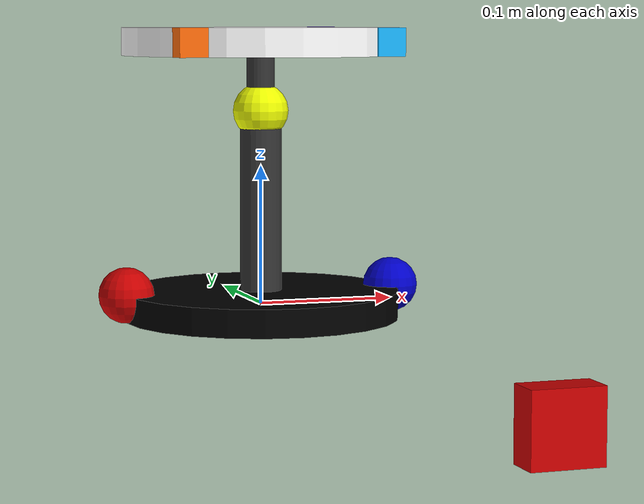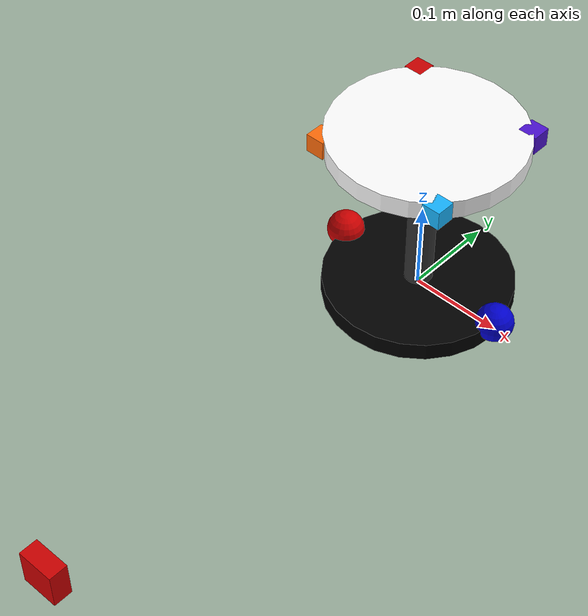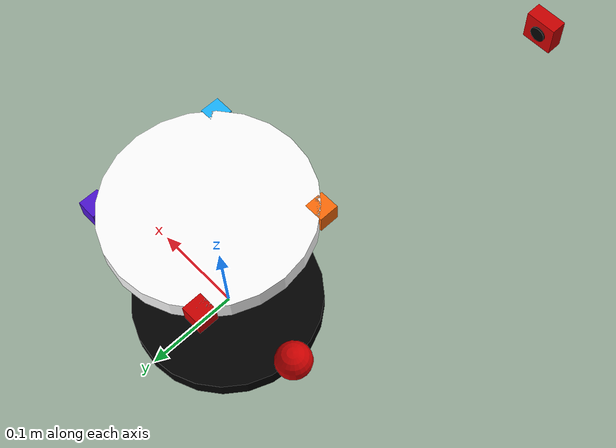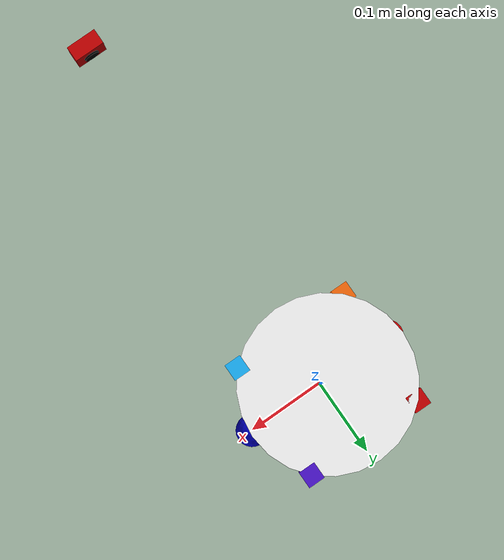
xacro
<?xml version="1.0" ?>

<robot name="cable_joint" xmlns:xacro="https://www.ros.org/wiki/xacro" >

  <!-- Constants for robot dimensions -->
  <xacro:property name="PI" value="3.1415926535897931"/>
  <xacro:property name="body_length" value="0.02" /> <!-- Size of square 'camera' box -->

  <!-- Import all Gazebo-customization elements, including Gazebo colors -->
  <xacro:include filename="$(find gazebo_rl)/cable_joint_description/urdf/cable_joint.gazebo.xacro" />
  <!-- Import Rviz colors -->
  <xacro:include filename="$(find gazebo_rl)/cable_joint_description/urdf/materials.xacro" />

  <!-- Used for fixing robot to Gazebo 'base_link' -->
  <link name="world"/>

  <joint name="joint_world_base" type="revolute">
    <origin rpy="0 0 0" xyz="0 0 0"/>
    <parent link="world"/>
    <child link="link_base"/>
    <limit effort="0" lower="0" upper="0" velocity="0"/>
    <axis rpy="0 0 0" xyz="0 0 1"/>
  </joint>

  <link name="link_base">
    <collision>
      <origin rpy="0 0 0" xyz="0 0 0"/>
      <geometry>
        <cylinder length="0.02" radius="0.1"/>
      </geometry>
    </collision>
    <visual>
      <origin rpy="0 0 0" xyz="0 0 0"/>
      <geometry>
        <cylinder length="0.02" radius="0.1"/>
      </geometry>
      <material name="black"/>
    </visual>
    <inertial>
      <mass value="1000"/>
      <origin rpy="0 0 0" xyz="0 0 0"/>
      <inertia ixx="2.533" ixy="0" ixz="0" iyy="2.533" iyz="0" izz="5.236"/>
    </inertial>
  </link>

  <joint name="joint_world_camerabody" type="revolute">
    <origin rpy="0 0 ${PI/2}" xyz="0 -0.5 ${body_length/2}"/>
    <parent link="world"/>
    <child link="link_camera_body"/>
    <limit effort="0" lower="0" upper="0" velocity="0"/>
    <axis rpy="0 0 0" xyz="0 0 1"/>
  </joint>

  <link name="link_camera_body">
    <collision>
      <origin rpy="0 0 0" xyz="0 -0.5 0"/>
      <geometry>
        <box size="${body_length} ${body_length*2} ${body_length*2}"/>
      </geometry>
    </collision>
    <visual>
      <origin rpy="0 0 0" xyz="0 0 0"/>
      <geometry>
        <box size="${body_length} ${body_length*2} ${body_length*2}"/>
      </geometry>
      <material name="red"/>
    </visual>
    <inertial>
      <mass value="0.1"/>
      <origin rpy="0 0 0" xyz="0 0 0"/>
      <inertia ixx="1e-6" ixy="0" ixz="0" iyy="1e-6" iyz="0" izz="1e-6"/>
    </inertial>
  </link>

  <joint name="joint_camerabody_lens" type="revolute">
    <origin rpy="0 ${PI/2} 0" xyz="${body_length/2+body_length/16} 0 0"/>
    <parent link="link_camera_body"/>
    <child link="link_lens"/>
    <limit effort="0" lower="0" upper="0" velocity="0"/>
    <axis rpy="0 0 0" xyz="0 0 1"/>
  </joint>

  <link name="link_lens">
    <collision>
      <origin rpy="0 0 0" xyz="0 -0.5 0"/>
      <geometry>
        <cylinder length="${body_length/8}" radius="${body_length/2}"/>
      </geometry>
    </collision>
    <visual>
      <origin rpy="0 0 0" xyz="0 0 0"/>
      <geometry>
        <cylinder length="${body_length/8}" radius="${body_length/2}"/>
      </geometry>
      <material name="black"/>
    </visual>
    <inertial>
      <mass value="0.01"/>
      <origin rpy="0 0 0" xyz="0 0 0"/>
      <inertia ixx="1e-6" ixy="0" ixz="0" iyy="1e-6" iyz="0" izz="1e-6"/>
    </inertial>
  </link>

  <!-- camera needs to be rotated coreectly -->
  <joint name="camera_optical_joint" type="fixed">
    <origin xyz="0 0 0" rpy="${-PI/2} ${-PI/2} ${PI/2}"/>
    <parent link="link_lens"/>
    <child link="link_optical"/>
  </joint>

  <link name="link_optical">
  </link>

  <joint name="joint_base_lowersupport" type="revolute">
    <origin rpy="0 0 0" xyz="0 0 0"/>
    <limit effort="0" lower="0" upper="0" velocity="0"/>
    <axis rpy="0 0 0" xyz="0 0 1"/>
    <parent link="link_base"/>
    <child link="link_lower_support"/>
    <origin rpy="0 0 0" xyz="0 0 0.01"/>
  </joint>

  <link name="link_lower_support">
    <collision>
      <origin rpy="0 0 0" xyz="0 0 0.07"/>
      <geometry>
        <cylinder length="0.14" radius="0.015"/>
      </geometry>
    </collision>
    <visual>
      <origin rpy="0 0 0" xyz="0 0 0.07"/>
      <geometry>
        <cylinder length="0.14" radius="0.015"/>
      </geometry>
      <material name="grey"/>
    </visual>
    <inertial>
      <mass value="100"/>
      <origin rpy="0 0 0" xyz="0 0 0"/>
      <inertia ixx="0.1" ixy="0" ixz="0" iyy="0.1" iyz="0" izz="0.1"/>
    </inertial>
  </link>

  <joint name="joint_base_pinwest" type="revolute">
    <parent link="link_base"/>
    <child link="link_pin_west"/>
    <origin rpy="0 0 0" xyz="-0.1 0 0.01"/>
    <limit effort="0" lower="0" upper="0" velocity="0"/>
    <axis rpy="0 0 0" xyz="0 0 1"/>
  </joint>

  <link name="link_pin_west">
    <collision>
      <origin rpy="0 0 0" xyz="0 0 0"/>
      <geometry>
        <sphere radius="0.02"/>
      </geometry>
    </collision>
    <visual>
      <origin rpy="0 0 0" xyz="0 0 0"/>
      <geometry>
        <sphere radius="0.02"/>
      </geometry>
      <material name="red"/>
    </visual>
    <inertial>
      <mass value="1"/>
      <origin rpy="0 0 0" xyz="0 0 0"/>
      <inertia ixx="1e-4" ixy="0" ixz="0" iyy="1e-4" iyz="0" izz="1e-4"/>
    </inertial>
  </link>

  <joint name="joint_base_pineast" type="revolute">
    <parent link="link_base"/>
    <child link="link_pin_east"/>
    <origin rpy="0 0 0" xyz="0.1 0 0.01"/>
    <limit effort="0" lower="0" upper="0" velocity="0"/>
    <axis rpy="0 0 0" xyz="0 0 1"/>
  </joint>

  <link name="link_pin_east">
    <collision>
      <origin rpy="0 0 0" xyz="0 0 0"/>
      <geometry>
        <sphere radius="0.02"/>
      </geometry>
    </collision>
    <visual>
      <origin rpy="0 0 0" xyz="0 0 0"/>
      <geometry>
        <sphere radius="0.02"/>
      </geometry>
      <material name="blue"/>
    </visual>
    <inertial>
      <mass value="1"/>
      <origin rpy="0 0 0" xyz="0 0 0"/>
      <inertia ixx="1e-4" ixy="0" ixz="0" iyy="1e-4" iyz="0" izz="1e-4"/>
    </inertial>
  </link>

  <joint name="joint_lowersupport_ballroll" type="revolute">
    <parent link="link_lower_support"/>
    <child link="link_ball_roll"/>
    <origin rpy="0 0 0" xyz="0 0 0.14"/>
    <axis xyz="1 0 0"/>
    <limit effort="10" velocity="${PI*2}" lower="${-4*PI/9}" upper="${4*PI/9}"/>
  </joint>

  <link name="link_ball_roll">
    <collision>
      <origin rpy="0 0 0" xyz="0 0 0"/>
      <geometry>
        <sphere radius="0.00001"/>
      </geometry>
    </collision>
    <visual>
      <origin rpy="0 0 0" xyz="0 0 0"/>
      <geometry>
        <sphere radius="0.00001"/>
      </geometry>
      <material name="white"/>
    </visual>
    <inertial>
      <mass value="0.1"/>
      <origin rpy="0 0 0" xyz="0 0 0"/>
      <inertia ixx="1e-8" ixy="0" ixz="0" iyy="1e-8" iyz="0" izz="1e-8"/>
    </inertial>
  </link>

  <joint name="joint_ballroll_ballpitch" type="revolute">
    <parent link="link_ball_roll"/>
    <child link="link_ball_pitch"/>
    <origin rpy="0 0 0" xyz="0 0 0"/>
    <axis xyz="0 1 0"/>
    <limit effort="10" velocity="${PI*2}" lower="${-4*PI/9}" upper="${4*PI/9}"/>
  </joint>

  <link name="link_ball_pitch">
    <collision>
      <origin rpy="0 0 0" xyz="0 0 0"/>
      <geometry>
        <sphere radius="0.00001"/>
      </geometry>
    </collision>
    <visual>
      <origin rpy="0 0 0" xyz="0 0 0"/>
      <geometry>
        <sphere radius="0.00001"/>
      </geometry>
      <material name="white"/>
    </visual>
    <inertial>
      <mass value="0.1"/>
      <origin rpy="0 0 0" xyz="0 0 0"/>
      <inertia ixx="1e-8" ixy="0" ixz="0" iyy="1e-8" iyz="0" izz="1e-8"/>
    </inertial>
  </link>

  <joint name="joint_ballpitch_ballyaw" type="revolute">
    <parent link="link_ball_pitch"/>
    <child link="link_ball_yaw"/>
    <origin rpy="0 0 0" xyz="0 0 0"/>
    <axis xyz="0 0 1"/>
    <limit effort="10" velocity="${PI*2}" lower="${-PI/8}" upper="${PI/8}"/>
  </joint>

  <link name="link_ball_yaw">
    <collision>
      <origin rpy="0 0 0" xyz="0 0 0"/>
      <geometry>
        <sphere radius="0.02"/>
      </geometry>
    </collision>
    <visual>
      <origin rpy="0 0 0" xyz="0 0 0"/>
      <geometry>
        <sphere radius="0.02"/>
      </geometry>
      <material name="yellow"/>
    </visual>
    <inertial>
      <mass value="1"/>
      <origin rpy="0 0 0" xyz="0 0 0"/>
      <inertia ixx="1e-6" ixy="0" ixz="0" iyy="1e-6" iyz="0" izz="1e-6"/>
    </inertial>
  </link>

  <joint name="joint_ballyaw_uppersupport" type="revolute">
    <origin rpy="0 0 0" xyz="0 0 0.03"/>
    <limit effort="0" lower="0" upper="0" velocity="0"/>
    <axis xyz="0 0 1"/>
    <parent link="link_ball_yaw"/>
    <child link="link_upper_support"/>
  </joint>

  <link name="link_upper_support">
    <collision>
      <origin rpy="0 0 0" xyz="0 0 0"/>
      <geometry>
        <cylinder length="0.04" radius="0.01"/>
      </geometry>
    </collision>
    <visual>
      <origin rpy="0 0 0" xyz="0 0 0"/>
      <geometry>
        <cylinder length="0.04" radius="0.01"/>
      </geometry>
      <material name="grey"/>
    </visual>
    <inertial>
      <mass value="1e-5"/>
      <origin rpy="0 0 0" xyz="0 0 0"/>
      <inertia ixx="1e-8" ixy="0" ixz="0" iyy="1e-8" iyz="0" izz="1e-8"/>
    </inertial>
  </link>

  <joint name="joint_uppersupport_disc" type="revolute">
    <origin rpy="0 0 0" xyz="0 0 0.02"/>
    <limit effort="0" lower="0" upper="0" velocity="0"/>
    <axis xyz="0 0 1"/>
    <parent link="link_upper_support"/>
    <child link="link_disc"/>
  </joint>

  <link name="link_disc">
    <collision>
      <origin rpy="0 0 0" xyz="0 0 0"/>
      <geometry>
        <cylinder length="0.02" radius="0.1"/>
      </geometry>
    </collision>
    <visual>
      <origin rpy="0 0 0" xyz="0 0 0"/>
      <geometry>
        <cylinder length="0.02" radius="0.1"/>
      </geometry>
      <material name="white"/>
    </visual>
    <inertial>
      <mass value="0.0001"/>
      <origin rpy="0 0 0" xyz="0 0 0"/>
      <inertia ixx="1e-6" ixy="0" ixz="0" iyy="1e-6" iyz="0" izz="1e-6"/>
    </inertial>
  </link>

  <joint name="joint_disc_cubenortheast" type="revolute">
    <parent link="link_disc"/>
    <child link="link_cube_northeast"/>
    <origin rpy="0 0 0" xyz="0.0707 0.0707 0"/>
    <limit effort="0" lower="0" upper="0" velocity="0"/>
    <axis rpy="0 0 0" xyz="0 0 1"/>
  </joint>

  <link name="link_cube_northeast">
    <collision>
      <origin rpy="0 0 0" xyz="0 0 0"/>
      <geometry>
        <box size="0.02 0.02 0.02" />
      </geometry>
    </collision>
    <visual>
      <origin rpy="0 0 0" xyz="0 0 0"/>
      <geometry>
        <box size="0.02 0.02 0.02" />
      </geometry>
      <material name="purple"/>
    </visual>
    <inertial>
      <mass value="1e-5"/>
      <origin rpy="0 0 0" xyz="0 0 0"/>
      <inertia ixx="1e-8" ixy="0" ixz="0" iyy="1e-8" iyz="0" izz="1e-8"/>
    </inertial>
  </link>

  <joint name="joint_disc_cubenorthwest" type="revolute">
    <parent link="link_disc"/>
    <child link="link_cube_northwest"/>
    <origin rpy="0 0 0" xyz="-0.0707 0.0707 0"/>
    <limit effort="0" lower="0" upper="0" velocity="0"/>
    <axis rpy="0 0 0" xyz="0 0 1"/>
  </joint>

  <link name="link_cube_northwest">
    <collision>
      <origin rpy="0 0 0" xyz="0 0 0"/>
      <geometry>
        <box size="0.02 0.02 0.02" />
      </geometry>
    </collision>
    <visual>
      <origin rpy="0 0 0" xyz="0 0 0"/>
      <geometry>
        <box size="0.02 0.02 0.02" />
      </geometry>
      <material name="red"/>
    </visual>
    <inertial>
      <mass value="1e-5"/>
      <origin rpy="0 0 0" xyz="0 0 0"/>
      <inertia ixx="1e-8" ixy="0" ixz="0" iyy="1e-8" iyz="0" izz="1e-8"/>
    </inertial>
  </link>

  <joint name="joint_disc_cubesouthwest" type="revolute">
    <parent link="link_disc"/>
    <child link="link_cube_southwest"/>
    <origin rpy="0 0 0" xyz="-0.0707 -0.0707 0"/>
    <limit effort="0" lower="0" upper="0" velocity="0"/>
    <axis rpy="0 0 0" xyz="0 0 1"/>
  </joint>

  <link name="link_cube_southwest">
    <collision>
      <origin rpy="0 0 0" xyz="0 0 0"/>
      <geometry>
        <box size="0.02 0.02 0.02" />
      </geometry>
    </collision>
    <visual>
      <origin rpy="0 0 0" xyz="0 0 0"/>
      <geometry>
        <box size="0.02 0.02 0.02" />
      </geometry>
      <material name="orange"/>
    </visual>
    <inertial>
      <mass value="1e-5"/>
      <origin rpy="0 0 0" xyz="0 0 0"/>
      <inertia ixx="1e-8" ixy="0" ixz="0" iyy="1e-8" iyz="0" izz="1e-8"/>
    </inertial>
  </link>

  <joint name="joint_disc_cubesoutheast" type="revolute">
    <parent link="link_disc"/>
    <child link="link_cube_southeast"/>
    <origin rpy="0 0 0" xyz="0.0707 -0.0707 0"/>
    <limit effort="0" lower="0" upper="0" velocity="0"/>
    <axis rpy="0 0 0" xyz="0 0 1"/>
  </joint>

  <link name="link_cube_southeast">
    <collision>
      <origin rpy="0 0 0" xyz="0 0 0"/>
      <geometry>
        <box size="0.02 0.02 0.02" />
      </geometry>
    </collision>
    <visual>
      <origin rpy="0 0 0" xyz="0 0 0"/>
      <geometry>
        <box size="0.02 0.02 0.02" />
      </geometry>
      <material name="sky"/>
    </visual>
    <inertial>
      <mass value="1e-5"/>
      <origin rpy="0 0 0" xyz="0 0 0"/>
      <inertia ixx="1e-8" ixy="0" ixz="0" iyy="1e-8" iyz="0" izz="1e-8"/>
    </inertial>
  </link>

</robot>

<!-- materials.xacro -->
<robot>

  <material name="black">
    <color rgba="0.0 0.0 0.0 1.0"/>
  </material>

  <material name="blue">
    <color rgba="0.0 0.0 0.8 1.0"/>
  </material>

  <material name="green">
    <color rgba="0.0 0.8 0.0 1.0"/>
  </material>

  <material name="grey">
    <color rgba="0.2 0.2 0.2 1.0"/>
  </material>

  <material name="orange">
    <color rgba="${255/255} ${108/255} ${10/255} 1.0"/>
  </material>

  <material name="brown">
    <color rgba="${222/255} ${207/255} ${195/255} 1.0"/>
  </material>

  <material name="red">
    <color rgba="0.8 0.0 0.0 1.0"/>
  </material>

  <material name="yellow">
    <color rgba="${240/255} 1.0 0.0 1.0"/>
  </material>

  <material name="purple">
    <color rgba="${77/255} ${19/255} ${209/255} 1.0"/>
  </material>

  <material name="seance">
    <color rgba="${154/255} ${18/255} ${179/255} 1.0"/>
  </material>

  <material name="sky">
    <color rgba="${25/255} ${181/255} ${254/255} 1.0"/>
  </material>

  <material name="white">
    <color rgba="1.0 1.0 1.0 1.0"/>
  </material>

</robot>
